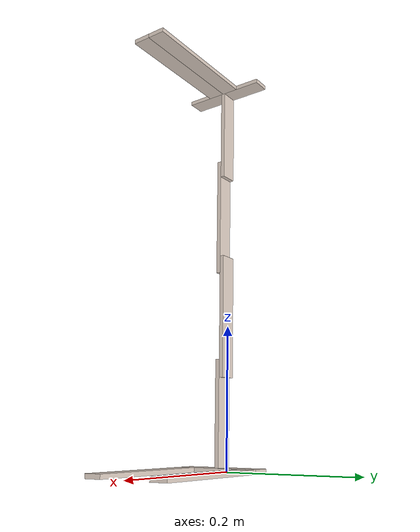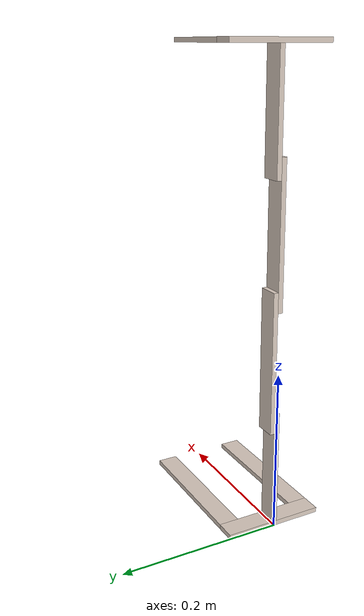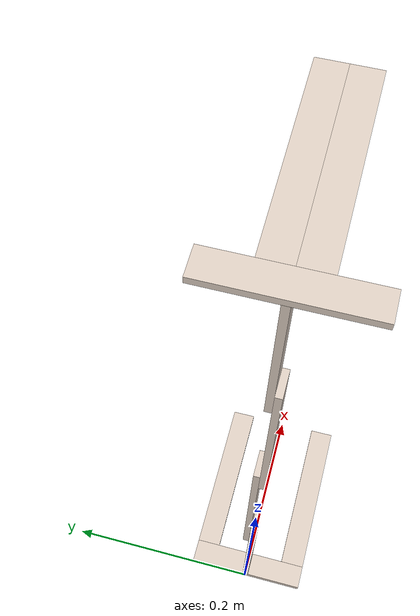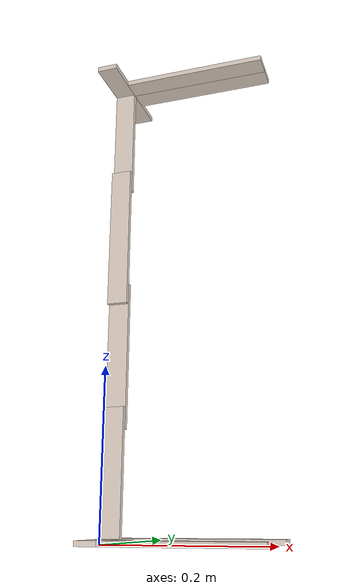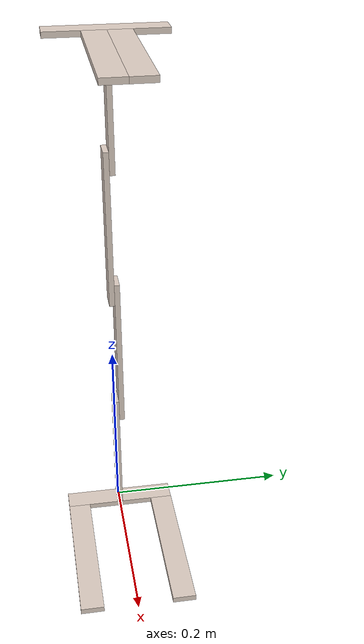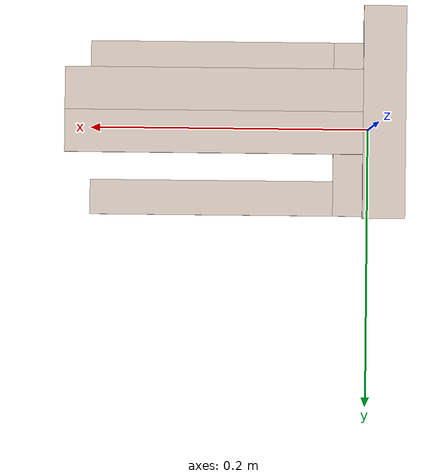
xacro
<?xml version="1.0"?>
<robot name="mybot" xmlns:xacro="http://www.ros.org/wiki/xacro">
        <!-- Put here the robot description -->

	<xacro:property name="PI" value="3.1415926535897931"/>

	<xacro:property name="thickness" value="0.006"/>
	<xacro:property name="width" value="0.025"/>

	<xacro:property name="oi" value="0.175"/>
	<xacro:property name="loiv" value="0.145"/>
	<xacro:property name="roiv" value="0.140"/>
	<xacro:property name="oiii" value="0.125"/>
	<xacro:property name="link" value="0.175"/>

	<xacro:property name="moffset" value="0.010"/>
	<xacro:property name="coffset" value="0.015"/>

	<xacro:property name="oiMass" value="0.022"/>
	<xacro:property name="oiiMass" value="0.022"/>
	<xacro:property name="oiiiMass" value="0.016"/>
	<xacro:property name="loivMass" value="0.021"/>
	<xacro:property name="roivMass" value="0.059"/>
	<xacro:property name="linkAMass" value="0.105"/>
	<xacro:property name="linkBMass" value="0.067"/>

	<xacro:property name="r1ll" value="0.65"/>
	<xacro:property name="r1l_" value="0.18"/>
	<xacro:property name="r2ll" value="0.15"/>
	<xacro:property name="r2l_" value="0.7"/>
	<xacro:property name="r3ll" value="0.72"/>
	<xacro:property name="r3l_" value="0.15"/>

	<xacro:property name="cameraSize" value="0.05"/>
	<xacro:property name="cameraMass" value="0.1"/>

	<xacro:arg name="gui" default="true"/>

	<xacro:include filename="$(find mybot_description)/urdf/mybot.gazebo" />
	<xacro:include filename="$(find mybot_description)/urdf/materials.xacro" />
	<xacro:include filename="$(find mybot_description)/urdf/macros.xacro" />

	<link name='LOI'>
	  <collision>
	    <origin xyz="${width+oi/2} ${width/2-oiii/2} ${thickness/2}" rpy="0 0 0"/>
	    <geometry>
	      <box size="${oi} ${width} ${thickness}"/>
	    </geometry>
	  </collision>
	  <visual>
	    <origin xyz="${width+oi/2} ${width/2-oiii/2} ${thickness/2}" rpy="0 0 0"/>
	    <geometry>
	      <box size="${oi} ${width} ${thickness}"/>
	    </geometry>
	    <material name="wood"/>
	  </visual>
	  <inertial>
	    <origin xyz="${width+oi/2} ${width/2-oiii/2} ${thickness/2}" rpy="0 0 0"/>
	    <mass value="${oiMass}"/>
	    <box_inertia m="${oiMass}" x="${oi}" y="${width}" z="${thickness}"/>
	  </inertial>
	  <surface>
	    <friction>
	      <ode>
		<mu>0.3</mu>
		<mu2>0.3</mu2>
	      </ode>
	    </friction>
	  </surface>
	</link>

	<link name='LOII'>
	  <collision>
	    <origin xyz="${width + oi/2} ${oiii/2-width/2} ${thickness/2}" rpy="0 0 0"/>
	    <geometry>
	      <box size="${oi} ${width} ${thickness}"/>
	    </geometry>
	  </collision>
	  <visual>
	    <origin xyz="${width + oi/2} ${oiii/2-width/2} ${thickness/2}" rpy="0 0 0"/>
	    <geometry>
	      <box size="${oi} ${width} ${thickness}"/>
	    </geometry>
	    <material name="wood"/>
	  </visual>
	  <inertial>
	    <origin xyz="${width + oi/2} ${oiii/2-width/2} ${thickness/2}" rpy="0 0 0"/>
	    <mass value="${oiiMass}"/>
	    <box_inertia m="${oiiMass}" x="${oi}" y="${width}" z="${thickness}"/>
	  </inertial>
	  <surface>
	    <friction>
	      <ode>
		<mu>0.3</mu><mu2>0.3</mu2>
	      </ode>
	    </friction>
	  </surface>
	</link>

	<link name='LOIII'>
	  <collision>
	    <origin xyz="${width/2} 0 ${thickness/2}" rpy="0 0 0"/>
	    <geometry>
	      <box size="${width} ${oiii} ${thickness}"/>
	    </geometry>
	  </collision>
	  <visual>
	    <origin xyz="${width/2} 0 ${thickness/2}" rpy="0 0 0"/>
	    <geometry>
	      <box size="${width} ${oiii} ${thickness}"/>
	    </geometry>
	    <material name="wood"/>
	  </visual>
	  <inertial>
	    <origin xyz="${width/2} 0 ${thickness/2}" rpy="0 0 0"/>
	    <mass value="${oiiiMass}"/>
	    <box_inertia m="${oiiiMass}" x="${width}" y="${oiii}" z="${thickness}"/>
	  </inertial>
	  <surface>
	    <friction>
	      <ode>
		<mu>0.3</mu>
		<mu2>0.3</mu2>
	      </ode>
	    </friction>
	  </surface>
	</link>

	<link name='LOIV'>
	  <collision>
	    <origin xyz="${width/2} 0 ${thickness + loiv/2}" rpy="0 0 0"/>
	    <geometry>
	      <box size="${width} ${thickness} ${loiv}"/>
	    </geometry>
	  </collision>
	  <visual>
	    <origin xyz="${width/2} 0 ${thickness + loiv/2}" rpy="0 0 0"/>
	    <geometry>
	      <box size="${width} ${thickness} ${loiv}"/>
	    </geometry>
	    <material name="wood"/>
	  </visual>
	  <inertial>
	    <origin xyz="${width/2} 0 ${thickness + loiv/2}" rpy="0 0 0"/>
	    <mass value="${loivMass}"/>
	    <box_inertia m="${loivMass}" x="${width}" y="${thickness}" z="${loiv}"/>
	  </inertial>
	  <surface>
	    <friction>
	      <ode>
		<mu>0.3</mu>
		<mu2>0.3</mu2>
	      </ode>
	    </friction>
	  </surface>
	</link>

	<link name='LinkA'>
	  <collision>
	    <origin xyz="0 0 ${link/2-coffset}" rpy="0 0 0"/>
	    <geometry>
	      <box size="${width} ${thickness} ${link}"/>
	    </geometry>
	  </collision>
	  <visual>
	    <origin xyz="0 0 ${link/2-coffset}" rpy="0 0 0"/>
	    <geometry>
	      <box size="${width} ${thickness} ${link}"/>
	    </geometry>
	    <material name="wood"/>
	  </visual>
	  <inertial>
	    <origin xyz="0 0 ${link/2-coffset}" rpy="0 0 0"/>
	    <mass value="${linkAMass}"/>
	    <box_inertia m="${linkAMass}" x="${width}" y="${thickness}" z="${link}"/>
	  </inertial>
	  <surface>
	    <friction>
	      <ode>
		<mu>0.3</mu>
		<mu2>0.3</mu2>
	      </ode>
	    </friction>
	  </surface>
	</link>

	<link name='LinkB'>
	  <collision>
	    <origin xyz="0 0 ${link/2-coffset}" rpy="0 0 0"/>
	    <geometry>
	      <box size="${width} ${thickness} ${link}"/>
	    </geometry>
	  </collision>
	  <visual>
	    <origin xyz="0 0 ${link/2-coffset}" rpy="0 0 0"/>
	    <geometry>
	      <box size="${width} ${thickness} ${link}"/>
	    </geometry>
	    <material name="wood"/>
	  </visual>
	  <inertial>
	    <origin xyz="0 0 ${link/2-coffset}" rpy="0 0 0"/>
	    <mass value="${linkBMass}"/>
	    <box_inertia m="${linkBMass}" x="${width}" y="${thickness}" z="${link}"/>
	  </inertial>
	  <surface>
	    <friction>
	      <ode>
		<mu>0.3</mu>
		<mu2>0.3</mu2>
	      </ode>
	    </friction>
	  </surface>
	</link>

	<link name='ROIV'>
	  <collision>
	    <origin xyz="0 0 ${roiv/2-coffset}" rpy="0 0 0"/>
	    <geometry>
	      <box size="${width} ${thickness} ${roiv}"/>
	    </geometry>
	  </collision>
	  <visual>
	    <origin xyz="0 0 ${roiv/2-coffset}" rpy="0 0 0"/>
	    <geometry>
	      <box size="${width} ${thickness} ${roiv}"/>
	    </geometry>
	    <material name="wood"/>
	  </visual>
	  <inertial>
	    <origin xyz="0 0 ${roiv/2-coffset}" rpy="0 0 0"/>
	    <mass value="${roivMass}"/>
	    <box_inertia m="${roivMass}" x="${width}" y="${thickness}" z="${link}"/>
	  </inertial>
	  <surface>
	    <friction>
	      <ode>
		<mu>0.3</mu>
		<mu2>0.3</mu2>
	      </ode>
	    </friction>
	  </surface>
	</link>

	<link name='ROIII'>
	  <collision>
	    <origin xyz="0 0 ${thickness/2-coffset+roiv}" rpy="0 0 0"/>
	    <geometry>
	      <box size="${width} ${oiii} ${thickness}"/>
	    </geometry>
	  </collision>
	  <visual>
	    <origin xyz="0 0 ${thickness/2-coffset+roiv}" rpy="0 0 0"/>
	    <geometry>
	      <box size="${width} ${oiii} ${thickness}"/>
	    </geometry>
	    <material name="wood"/>
	  </visual>
	  <inertial>
	    <origin xyz="0 0 ${thickness/2-coffset+roiv}" rpy="0 0 0"/>
	    <mass value="${oiiiMass}"/>
	    <box_inertia m="${oiiiMass}" x="${width}" y="${oiii}" z="${thickness}"/>
	  </inertial>
	  <surface>
	    <friction>
	      <ode>
		<mu>0.3</mu>
		<mu2>0.3</mu2>
	      </ode>
	    </friction>
	  </surface>
	</link>

	<link name='ROII'>
	  <collision>
	    <origin xyz="${width/2 + oi/2} ${width/2} ${thickness/2-coffset+roiv}" rpy="0 0 0"/>
	    <geometry>
	      <box size="${oi} ${width} ${thickness}"/>
	    </geometry>
	  </collision>
	  <visual>
	    <origin xyz="${width/2 + oi/2} ${width/2} ${thickness/2-coffset+roiv}" rpy="0 0 0"/>
	    <geometry>
	      <box size="${oi} ${width} ${thickness}"/>
	    </geometry>
	    <material name="wood"/>
	  </visual>
	  <inertial>
	    <origin xyz="${width/2 + oi/2} ${width/2} ${thickness/2-coffset+roiv}" rpy="0 0 0"/>
	    <mass value="${oiiMass}"/>
	    <box_inertia m="${oiiMass}" x="${oi}" y="${width}" z="${thickness}"/>
	  </inertial>
	  <surface>
	    <friction>
	      <ode>
		<mu>0.3</mu>
		<mu2>0.3</mu2>
	      </ode>
	    </friction>
	  </surface>
	</link>

	<link name='ROI'>
	  <collision>
	    <origin xyz="${width/2 + oi/2} ${-width/2} ${thickness/2-coffset+roiv}" rpy="0 0 0"/>
	    <geometry>
	      <box size="${oi} ${width} ${thickness}"/>
	    </geometry>
	  </collision>
	  <visual>
	    <origin xyz="${width/2 + oi/2} ${-width/2} ${thickness/2-coffset+roiv}" rpy="0 0 0"/>
	    <geometry>
	      <box size="${oi} ${width} ${thickness}"/>
	    </geometry>
	    <material name="wood"/>
	  </visual>
	  <inertial>
	    <origin xyz="${width/2 + oi/2} ${-width/2} ${thickness/2-coffset+roiv}" rpy="0 0 0"/>
	    <mass value="${oiMass}"/>
	    <box_inertia m="${oiMass}" x="${oi}" y="${width}" z="${thickness}"/>
	  </inertial>
	  <surface>
	    <friction>
	      <ode>
		<mu>0.3</mu>
		<mu2>0.3</mu2>
	      </ode>
	    </friction>
	  </surface>
	</link>

	<link name="footprint" />

	<joint name="base_joint" type="fixed">
	  <parent link="footprint"/>
	  <child link="LOIII"/>
	</joint>
	<joint name="f1" type="fixed">
	  <parent link="LOIII"/>
	  <child link="LOI"/>
	</joint>
	<joint name="f2" type="fixed">
	  <parent link="LOIII"/>
	  <child link="LOII"/>
	</joint>
	<joint name="f3" type="fixed">
	  <parent link="LOIII"/>
	  <child link="LOIV"/>
	</joint>
	<joint name="r1" type="revolute">
	  <parent link="LOIV"/>
	  <child link="LinkA"/>
	  <origin xyz="${width/2} ${thickness} ${thickness + loiv - moffset}" rpy="0 0 0"/>
	  <limit lower="${((r1ll-1)/(r1ll-r1l_))*PI/2}" upper="${((0-r1ll)/(r1l_-r1ll))*PI/2}" effort="10" velocity="1"/>
	  <axis xyz="0 1 0"/>
	  <dynamics damping="0.2" friction="0.2"/>
	</joint>
	<joint name="r2" type="revolute">
	  <parent link="LinkA"/>
	  <child link="LinkB"/>
	  <origin xyz="0 ${-thickness} ${link - coffset - moffset}" rpy="0 0 0"/>
	  <limit lower="${((r2ll-0)/(r2ll-r2l_))*PI/2}" upper="${((r2ll-1)/(r2ll-r2l_))*PI/2}" effort="10" velocity="1"/>
	  <axis xyz="0 1 0"/>
	  <dynamics damping="0.2" friction="0.2"/>
	</joint>
	<joint name="r3" type="revolute">
	  <parent link="LinkB"/>
	  <child link="ROIV"/>
	  <origin xyz="0 ${thickness} ${link - coffset - moffset}" rpy="0 0 0"/>
	  <limit lower="${((r3ll-1)/(r3ll-r3l_))*PI/2}" upper="${((0-r3ll)/(r3l_-r3ll))*PI/2}" effort="10" velocity="1"/>
	  <axis xyz="0 1 0"/>
	  <dynamics damping="0.2" friction="0.2"/>
	</joint>
	<joint name="f4" type="fixed">
	  <parent link="ROIV"/>
	  <child link="ROIII"/>
	</joint>
	<joint name="f5" type="fixed">
	  <parent link="ROIII"/>
	  <child link="ROI"/>
	</joint>
	<joint name="f6" type="fixed">
	  <parent link="ROIII"/>
	  <child link="ROII"/>
	</joint>

	<transmission name="t1">
	  <type>transmission_interface/SimpleTransmission</type>
	  <joint name="r1">
	    <hardwareInterface>hardware_interface/EffortJointInterface</hardwareInterface>
	  </joint>
	  <actuator name="m1">
	    <mechanicalReduction>1</mechanicalReduction>
	  </actuator>
	</transmission>
	<transmission name="t2">
	  <type>transmission_interface/SimpleTransmission</type>
	  <joint name="r2">
	    <hardwareInterface>hardware_interface/EffortJointInterface</hardwareInterface>
	  </joint>
	  <actuator name="m2">
	    <mechanicalReduction>1</mechanicalReduction>
	  </actuator>
	</transmission>
	<transmission name="t3">
	  <type>transmission_interface/SimpleTransmission</type>
	  <joint name="r3">
	    <hardwareInterface>hardware_interface/EffortJointInterface</hardwareInterface>
	  </joint>
	  <actuator name="m3">
	    <mechanicalReduction>1</mechanicalReduction>
	  </actuator>
	</transmission>

</robot>

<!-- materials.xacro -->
<robot name="mybot" xmlns:xacro="http://www.ros.org/wiki/xacro">
	<material name="black">
	  <color rgba="0.0 0.0 0.0 1.0"/>
	</material>

	<material name="blue">
	  <color rgba="0.0 0.0 0.8 1.0"/>
	</material>

	<material name="green">
	  <color rgba="0.0 0.8 0.0 1.0"/>
	</material>

	<material name="grey">
	  <color rgba="0.2 0.2 0.2 1.0"/>
	</material>

	<material name="orange">
	  <color rgba="${255/255} ${108/255} ${10/255} 1.0"/>
	</material>

	<material name="wood">
	  <color rgba="${222/255} ${207/255} ${195/255} 1.0"/>
	</material>

	<material name="red">
	  <color rgba="0.8 0.0 0.0 1.0"/>
	</material>

	<material name="white">
	  <color rgba="1.0 1.0 1.0 1.0"/>
	</material>
</robot>

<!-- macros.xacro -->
<robot name="mybot" xmlns:xacro="http://www.ros.org/wiki/xacro">
	<xacro:macro name="cylinder_inertia" params="m r h">
	  <inertia  ixx="${m*(3*r*r+h*h)/12}" ixy = "0" ixz = "0"
	    iyy="${m*(3*r*r+h*h)/12}" iyz = "0"
	    izz="${m*r*r/2}"
	  />
	</xacro:macro>

	<xacro:macro name="box_inertia" params="m x y z">
	  <inertia  ixx="${m*(y*y+z*z)/12}" ixy = "0" ixz = "0"
	    iyy="${m*(x*x+z*z)/12}" iyz = "0"
	    izz="${m*(x*x+z*z)/12}"
	  />
	</xacro:macro>

	<xacro:macro name="sphere_inertia" params="m r">
	  <inertia  ixx="${2*m*r*r/5}" ixy = "0" ixz = "0"
	    iyy="${2*m*r*r/5}" iyz = "0"
	    izz="${2*m*r*r/5}"
	  />
	</xacro:macro>
</robot>
